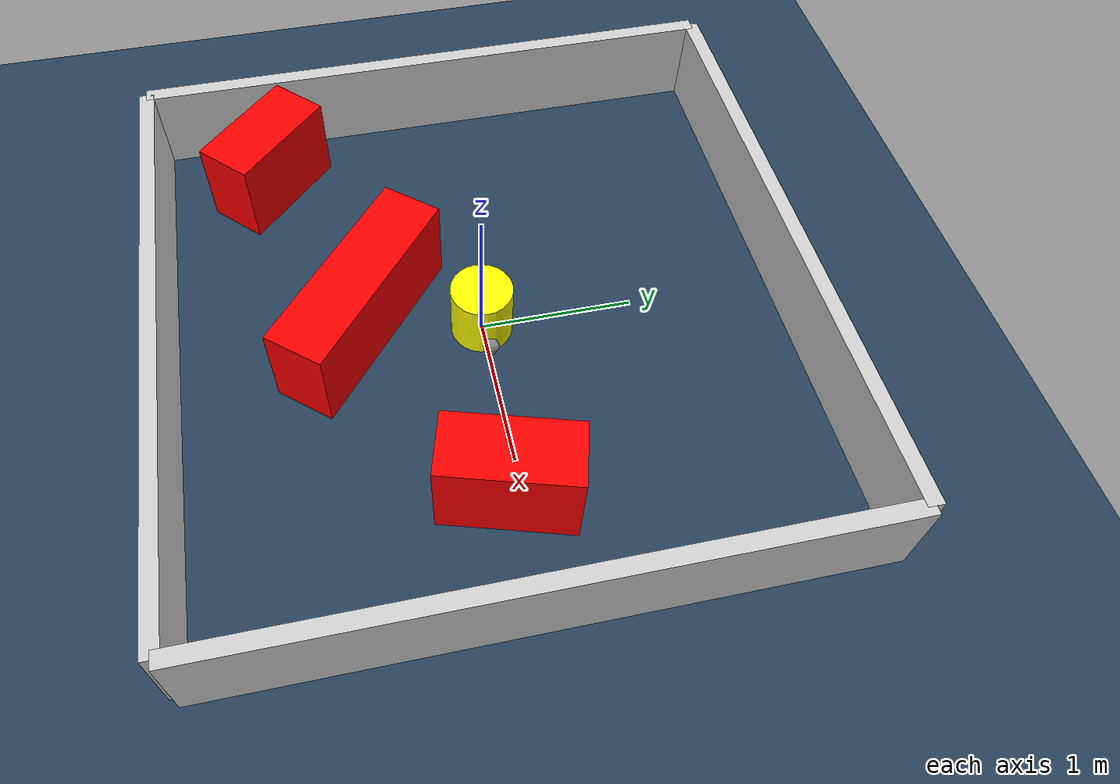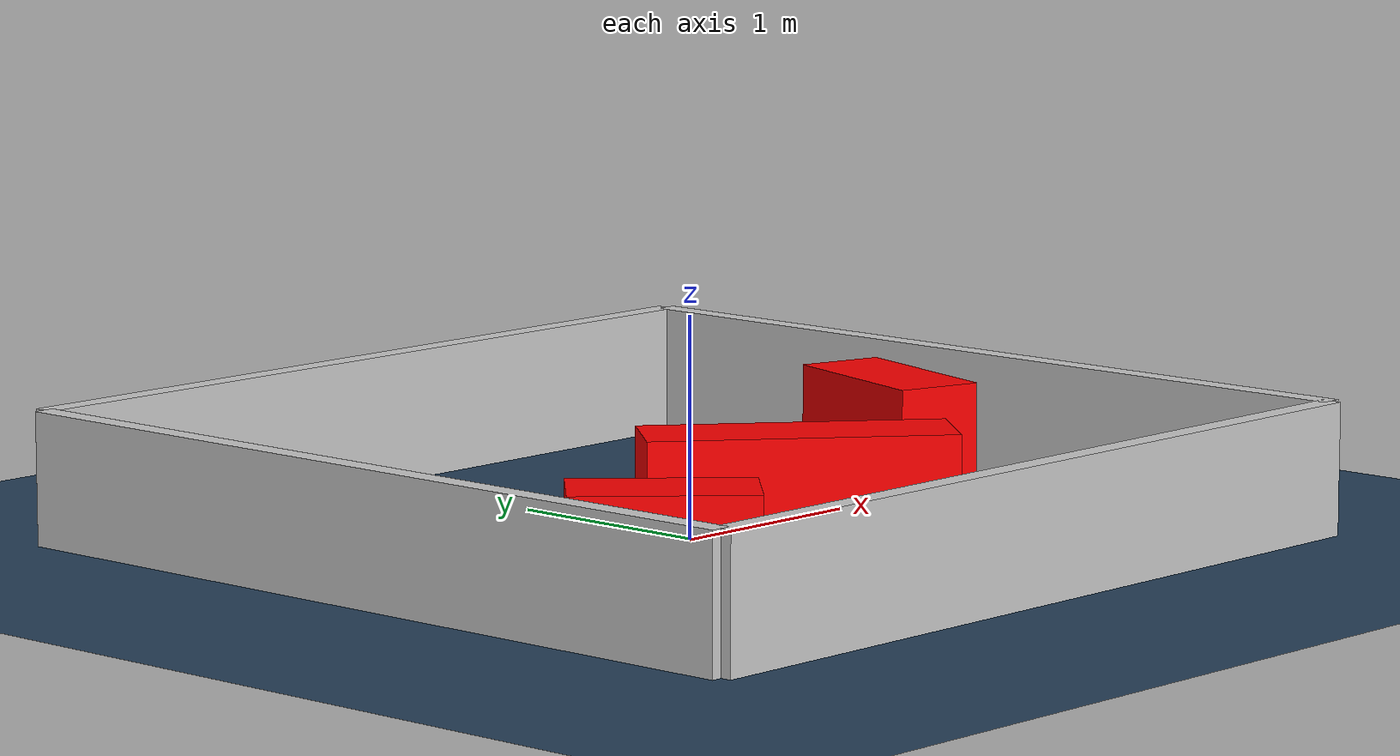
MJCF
<?xml version="1.0" ?>
<mujoco model="generated_environment">
  <option timestep="0.01" integrator="RK4" cone="elliptic"/>
  <default>
    <geom density="1"/>
  </default>
  <asset>
    <texture builtin="gradient" height="3072" rgb1="0.3 0.5 0.7" rgb2="0 0 0" type="skybox" width="512"/>
    <texture builtin="checker" height="300" mark="edge" markrgb="0.8 0.8 0.8" name="groundplane" rgb1="0.2 0.3 0.4" rgb2="0.1 0.2 0.3" type="2d" width="300"/>
    <material name="groundplane" reflectance="0.2" texrepeat="5 5" texture="groundplane" texuniform="true"/>
    <material name="robot" rgba="0.0 1.0 0.0 1"/>
  </asset>
  <worldbody>
    <light dir="0 0 -1" directional="true" pos="0 0 1.5"/>
    <geom condim="4" friction="1.0 0.005 0.001" material="groundplane" name="floor" size="0 0 0.05" type="plane"/>
    <body name="walls">
      <geom name="wall_1" condim="4" pos="-2.0 0.0 0.3" rgba="0.800000011920929 0.800000011920929 0.800000011920929 1.0" size="0.05 2.0 0.3" type="box"/>
      <geom name="wall_2" condim="4" pos="2.0 0.0 0.3" rgba="0.800000011920929 0.800000011920929 0.800000011920929 1.0" size="0.05 2.0 0.3" type="box"/>
      <geom name="wall_3" condim="4" pos="0.0 -2.0 0.3" rgba="0.800000011920929 0.800000011920929 0.800000011920929 1.0" size="2.0 0.05 0.3" type="box"/>
      <geom name="wall_4" condim="4" pos="0.0 2.0 0.3" rgba="0.800000011920929 0.800000011920929 0.800000011920929 1.0" size="2.0 0.05 0.3" type="box"/>
    </body>
    <body name="robot">
      <joint name="joint_x" type="slide" pos="0 0 0" axis="1 0 0"/>
      <joint name="joint_y" type="slide" pos="0 0 0" axis="0 1 0"/>
      <geom name="robot" type="sphere" pos="0.3 0.0 0.2" size="0.05" mass="5." friction="1.0 0.005 0.0001" condim="4" rgba="0.5 0.5 0.5 1.0"/>
      <site name="sensor_ball"/>
    </body>
    <body name="obstacle_movable_1">
      <geom name="obstacle_movable_1" condim="4" pos="0.0 0.0 0.2" euler="0 0 0.0" friction="1.0 0.005 0.001" rgba="1.0 1.0 0.0 1.0" size="0.2 0.2 0.0" type="cylinder" mass="0.1"/>
      <joint type="free"/>
    </body>
    <body name="obstacle_2_static">
      <geom name="obstacle_2_static" condim="4" pos="-1.5078495497620432 -1.233883491893876 0.3" euler="0 0 315.134688825606" friction="1.0 0.005 0.001" rgba="1 0 0 1" size="0.39797649826807124 0.2 0.3" type="box"/>
    </body>
    <body name="obstacle_3_static">
      <geom name="obstacle_3_static" condim="4" pos="-0.1472184111743997 -0.7586597304102274 0.3" euler="0 0 140.14353897565383" friction="1.0 0.005 0.001" rgba="1 0 0 1" size="0.6772317381117998 0.2 0.3" type="box"/>
    </body>
    <body name="obstacle_4_static">
      <geom name="obstacle_4_static" condim="4" pos="1.235967402987445 -0.08679183136196089 0.3" euler="0 0 73.78161072589288" friction="1.0 0.005 0.001" rgba="1 0 0 1" size="0.4146077194028315 0.2 0.3" type="box"/>
    </body>
  </worldbody>
  <actuator>
    <motor name="actuator_x" joint="joint_x" gear="1" ctrlrange="-1 1"/>
    <motor name="actuator_y" joint="joint_y" gear="1" ctrlrange="-1 1"/>
  </actuator>
</mujoco>
